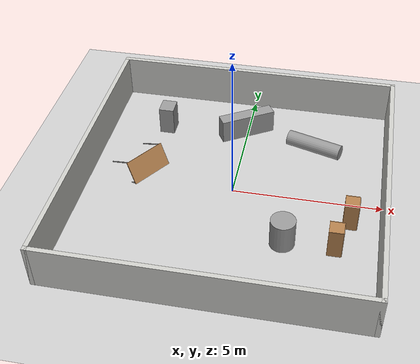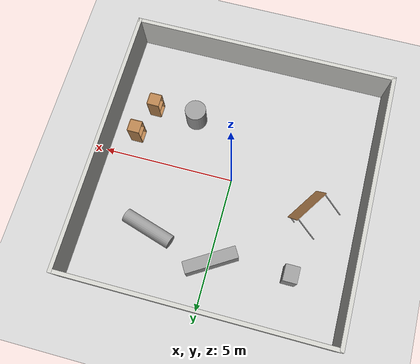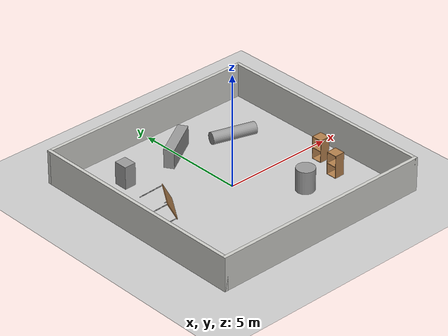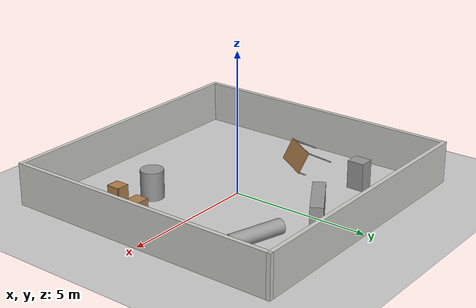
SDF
<sdf version="1.7">
 <world name="default">
  <light name="sun" type="directional">
   <pose>0 0 10 0 -0 0</pose>
   <diffuse>0.8 0.8 0.8 1</diffuse>
   <specular>0.2 0.2 0.2 1</specular>
   <attenuation>
    <range>1000</range>
    <constant>0.9</constant>
    <linear>0.01</linear>
    <quadratic>0.001</quadratic>
   </attenuation>
   <direction>-0.5 0.1 -0.9</direction>
   <spot><inner_angle>0</inner_angle><outer_angle>0</outer_angle><falloff>0</falloff></spot>
  </light>
  <model name="ground_plane">
   <static>1</static>
   <link name="link">
    <collision name="collision">
     <geometry><plane><normal>0 0 1</normal><size>100 100</size></plane></geometry>
     <surface><friction><ode><mu>100</mu><mu2>50</mu2></ode></friction></surface>
    </collision>
    <visual name="visual">
     <cast_shadows>0</cast_shadows>
     <geometry><plane><normal>0 0 1</normal><size>100 100</size></plane></geometry>
     <material>
      <script><uri>file://media/materials/scripts/gazebo.material</uri><name>Gazebo/Grey</name></script>
     </material>
    </visual>
   </link>
  </model>
  <gravity>0 0 -9.8</gravity>
  <magnetic_field>6e-06 2.3e-05 -4.2e-05</magnetic_field>
  <atmosphere type="adiabatic"/>
  <physics type="ode">
   <max_step_size>0.001</max_step_size>
   <real_time_factor>1</real_time_factor>
   <real_time_update_rate>1000</real_time_update_rate>
  </physics>
  <scene><ambient>0.4 0.4 0.4 1</ambient><background>0.7 0.7 0.7 1</background><shadows>1</shadows></scene>
  <audio><device>default</device></audio>
  <spherical_coordinates>
   <surface_model>EARTH_WGS84</surface_model>
   <latitude_deg>0</latitude_deg>
   <longitude_deg>0</longitude_deg>
   <elevation>0</elevation>
   <heading_deg>0</heading_deg>
  </spherical_coordinates>
  <model name="my_first_world">
   <pose>-0.01092 0.003198 0 0 -0 0</pose>
   <link name="Wall_38">
    <collision name="Wall_38_Collision">
     <geometry><box><size>10.15 0.15 1.5</size></box></geometry>
     <pose>0 0 0.75 0 -0 0</pose>
    </collision>
    <visual name="Wall_38_Visual">
     <pose>0 0 0.75 0 -0 0</pose>
     <geometry><box><size>10.15 0.15 1.5</size></box></geometry>
     <material>
      <script><uri>file://media/materials/scripts/gazebo.material</uri><name>Gazebo/CeilingTiled</name></script>
      <ambient>1 1 1 1</ambient>
     </material>
     <meta><layer>0</layer></meta>
    </visual>
    <pose>-5 0 0 0 -0 -1.5708</pose>
   </link>
   <link name="Wall_39">
    <collision name="Wall_39_Collision">
     <geometry><box><size>10.15 0.15 1.5</size></box></geometry>
     <pose>0 0 0.75 0 -0 0</pose>
    </collision>
    <visual name="Wall_39_Visual">
     <pose>0 0 0.75 0 -0 0</pose>
     <geometry><box><size>10.15 0.15 1.5</size></box></geometry>
     <material>
      <script><uri>file://media/materials/scripts/gazebo.material</uri><name>Gazebo/CeilingTiled</name></script>
      <ambient>1 1 1 1</ambient>
     </material>
     <meta><layer>0</layer></meta>
    </visual>
    <pose>0 -5 0 0 -0 0</pose>
   </link>
   <link name="Wall_40">
    <collision name="Wall_40_Collision">
     <geometry><box><size>10.15 0.15 1.5</size></box></geometry>
     <pose>0 0 0.75 0 -0 0</pose>
    </collision>
    <visual name="Wall_40_Visual">
     <pose>0 0 0.75 0 -0 0</pose>
     <geometry><box><size>10.15 0.15 1.5</size></box></geometry>
     <material>
      <script><uri>file://media/materials/scripts/gazebo.material</uri><name>Gazebo/CeilingTiled</name></script>
      <ambient>1 1 1 1</ambient>
     </material>
     <meta><layer>0</layer></meta>
    </visual>
    <pose>5 0 0 0 -0 1.5708</pose>
   </link>
   <link name="Wall_41">
    <collision name="Wall_41_Collision">
     <geometry><box><size>10.15 0.15 1.5</size></box></geometry>
     <pose>0 0 0.75 0 -0 0</pose>
    </collision>
    <visual name="Wall_41_Visual">
     <pose>0 0 0.75 0 -0 0</pose>
     <geometry><box><size>10.15 0.15 1.5</size></box></geometry>
     <material>
      <script><uri>file://media/materials/scripts/gazebo.material</uri><name>Gazebo/CeilingTiled</name></script>
      <ambient>1 1 1 1</ambient>
     </material>
     <meta><layer>0</layer></meta>
    </visual>
    <pose>0 5 0 0 -0 3.14159</pose>
   </link>
   <static>1</static>
  </model>
  <model name="unit_box">
   <pose>-2.93299 2.97169 0.5 0 0 -0.000183</pose>
   <link name="link">
    <inertial>
     <mass>1</mass>
     <inertia>
      <ixx>0.166667</ixx>
      <ixy>0</ixy>
      <ixz>0</ixz>
      <iyy>0.166667</iyy>
      <iyz>0</iyz>
      <izz>0.166667</izz>
     </inertia>
    </inertial>
    <collision name="collision"><geometry><box><size>0.524071 0.602367 1</size></box></geometry></collision>
    <visual name="visual">
     <geometry><box><size>0.524071 0.602367 1</size></box></geometry>
     <material>
      <script><name>Gazebo/Grey</name><uri>file://media/materials/scripts/gazebo.material</uri></script>
     </material>
    </visual>
   </link>
  </model>
  <model name="unit_cylinder">
   <pose>1.94949 -2.07605 0.499994 1e-06 1e-06 0</pose>
   <link name="link">
    <inertial>
     <mass>1</mass>
     <inertia><ixx>0.145833</ixx><ixy>0</ixy><ixz>0</ixz><iyy>0.145833</iyy><iyz>0</iyz><izz>0.125</izz></inertia>
    </inertial>
    <collision name="collision">
     <geometry><cylinder><radius>0.401266</radius><length>1</length></cylinder></geometry>
    </collision>
    <visual name="visual">
     <geometry><cylinder><radius>0.401266</radius><length>1</length></cylinder></geometry>
     <material>
      <script><name>Gazebo/Grey</name><uri>file://media/materials/scripts/gazebo.material</uri></script>
     </material>
    </visual>
   </link>
  </model>
  <model name="cabinet">
   <static>1</static>
   <link name="cabinet_bottom_plate">
    <inertial>
     <pose>0 0 -1 0 -0 0</pose>
     <inertia><ixx>2.05</ixx><ixy>0</ixy><ixz>0</ixz><iyy>2.05</iyy><iyz>0</iyz><izz>2.05</izz></inertia>
     <mass>25</mass>
    </inertial>
    <collision name="cabinet_bottom_plate_geom">
     <pose>0 0 0.01 0 -0 0</pose>
     <geometry><box><size>0.45 0.45 0.02</size></box></geometry>
    </collision>
    <visual name="cabinet_bottom_plate_geom_visual">
     <pose>0 0 0.01 0 -0 0</pose>
     <geometry><box><size>0.45 0.45 0.02</size></box></geometry>
     <material>
      <script><uri>file://media/materials/scripts/gazebo.material</uri><name>Gazebo/Wood</name></script>
     </material>
    </visual>
    <collision name="cabinet_bottom_plate_geom_cabinet_back_plate">
     <pose>0.235 0 0.51 0 -0 0</pose>
     <geometry><box><size>0.02 0.45 1.02</size></box></geometry>
    </collision>
    <visual name="cabinet_bottom_plate_geom_cabinet_back_plate_visual">
     <pose>0.235 0 0.51 0 -0 0</pose>
     <geometry><box><size>0.02 0.45 1.02</size></box></geometry>
     <material>
      <script><uri>file://media/materials/scripts/gazebo.material</uri><name>Gazebo/Wood</name></script>
     </material>
    </visual>
    <collision name="cabinet_bottom_plate_geom_cabinet_left_plate">
     <pose>0 0.235 0.51 0 -0 0</pose>
     <geometry><box><size>0.45 0.02 1.02</size></box></geometry>
    </collision>
    <visual name="cabinet_bottom_plate_geom_cabinet_left_plate_visual">
     <pose>0 0.235 0.51 0 -0 0</pose>
     <geometry><box><size>0.45 0.02 1.02</size></box></geometry>
     <material>
      <script><uri>file://media/materials/scripts/gazebo.material</uri><name>Gazebo/Wood</name></script>
     </material>
    </visual>
    <collision name="cabinet_bottom_plate_geom_cabinet_middle_plate">
     <pose>0 0 0.51 0 -0 0</pose>
     <geometry><box><size>0.45 0.45 0.02</size></box></geometry>
    </collision>
    <visual name="cabinet_bottom_plate_geom_cabinet_middle_plate_visual">
     <pose>0 0 0.51 0 -0 0</pose>
     <geometry><box><size>0.45 0.45 0.02</size></box></geometry>
     <material>
      <script><uri>file://media/materials/scripts/gazebo.material</uri><name>Gazebo/Wood</name></script>
     </material>
    </visual>
    <collision name="cabinet_bottom_plate_geom_cabinet_right_plate">
     <pose>0 -0.235 0.51 0 -0 0</pose>
     <geometry><box><size>0.45 0.02 1.02</size></box></geometry>
    </collision>
    <visual name="cabinet_bottom_plate_geom_cabinet_right_plate_visual">
     <pose>0 -0.235 0.51 0 -0 0</pose>
     <geometry><box><size>0.45 0.02 1.02</size></box></geometry>
     <material>
      <script><uri>file://media/materials/scripts/gazebo.material</uri><name>Gazebo/Wood</name></script>
     </material>
    </visual>
    <collision name="cabinet_bottom_plate_geom_cabinet_top_plate">
     <pose>0 0 1.01 0 -0 0</pose>
     <geometry><box><size>0.45 0.45 0.02</size></box></geometry>
    </collision>
    <visual name="cabinet_bottom_plate_geom_cabinet_top_plate_visual">
     <pose>0 0 1.01 0 -0 0</pose>
     <geometry><box><size>0.45 0.45 0.02</size></box></geometry>
     <material>
      <script><uri>file://media/materials/scripts/gazebo.material</uri><name>Gazebo/Wood</name></script>
     </material>
    </visual>
   </link>
   <pose>3.96562 -0.867046 0 0 -0 0</pose>
  </model>
  <model name="cabinet_0">
   <static>1</static>
   <link name="cabinet_bottom_plate">
    <inertial>
     <pose>0 0 -1 0 -0 0</pose>
     <inertia><ixx>2.05</ixx><ixy>0</ixy><ixz>0</ixz><iyy>2.05</iyy><iyz>0</iyz><izz>2.05</izz></inertia>
     <mass>25</mass>
    </inertial>
    <collision name="cabinet_bottom_plate_geom">
     <pose>0 0 0.01 0 -0 0</pose>
     <geometry><box><size>0.45 0.45 0.02</size></box></geometry>
    </collision>
    <visual name="cabinet_bottom_plate_geom_visual">
     <pose>0 0 0.01 0 -0 0</pose>
     <geometry><box><size>0.45 0.45 0.02</size></box></geometry>
     <material>
      <script><uri>file://media/materials/scripts/gazebo.material</uri><name>Gazebo/Wood</name></script>
     </material>
    </visual>
    <collision name="cabinet_bottom_plate_geom_cabinet_back_plate">
     <pose>0.235 0 0.51 0 -0 0</pose>
     <geometry><box><size>0.02 0.45 1.02</size></box></geometry>
    </collision>
    <visual name="cabinet_bottom_plate_geom_cabinet_back_plate_visual">
     <pose>0.235 0 0.51 0 -0 0</pose>
     <geometry><box><size>0.02 0.45 1.02</size></box></geometry>
     <material>
      <script><uri>file://media/materials/scripts/gazebo.material</uri><name>Gazebo/Wood</name></script>
     </material>
    </visual>
    <collision name="cabinet_bottom_plate_geom_cabinet_left_plate">
     <pose>0 0.235 0.51 0 -0 0</pose>
     <geometry><box><size>0.45 0.02 1.02</size></box></geometry>
    </collision>
    <visual name="cabinet_bottom_plate_geom_cabinet_left_plate_visual">
     <pose>0 0.235 0.51 0 -0 0</pose>
     <geometry><box><size>0.45 0.02 1.02</size></box></geometry>
     <material>
      <script><uri>file://media/materials/scripts/gazebo.material</uri><name>Gazebo/Wood</name></script>
     </material>
    </visual>
    <collision name="cabinet_bottom_plate_geom_cabinet_middle_plate">
     <pose>0 0 0.51 0 -0 0</pose>
     <geometry><box><size>0.45 0.45 0.02</size></box></geometry>
    </collision>
    <visual name="cabinet_bottom_plate_geom_cabinet_middle_plate_visual">
     <pose>0 0 0.51 0 -0 0</pose>
     <geometry><box><size>0.45 0.45 0.02</size></box></geometry>
     <material>
      <script><uri>file://media/materials/scripts/gazebo.material</uri><name>Gazebo/Wood</name></script>
     </material>
    </visual>
    <collision name="cabinet_bottom_plate_geom_cabinet_right_plate">
     <pose>0 -0.235 0.51 0 -0 0</pose>
     <geometry><box><size>0.45 0.02 1.02</size></box></geometry>
    </collision>
    <visual name="cabinet_bottom_plate_geom_cabinet_right_plate_visual">
     <pose>0 -0.235 0.51 0 -0 0</pose>
     <geometry><box><size>0.45 0.02 1.02</size></box></geometry>
     <material>
      <script><uri>file://media/materials/scripts/gazebo.material</uri><name>Gazebo/Wood</name></script>
     </material>
    </visual>
    <collision name="cabinet_bottom_plate_geom_cabinet_top_plate">
     <pose>0 0 1.01 0 -0 0</pose>
     <geometry><box><size>0.45 0.45 0.02</size></box></geometry>
    </collision>
    <visual name="cabinet_bottom_plate_geom_cabinet_top_plate_visual">
     <pose>0 0 1.01 0 -0 0</pose>
     <geometry><box><size>0.45 0.45 0.02</size></box></geometry>
     <material>
      <script><uri>file://media/materials/scripts/gazebo.material</uri><name>Gazebo/Wood</name></script>
     </material>
    </visual>
   </link>
   <pose>3.57188 -2.08963 0 0 -0 0</pose>
  </model>
  <model name="table">
   <static>1</static>
   <link name="link">
    <collision name="surface">
     <pose>0 0 1 0 -0 0</pose>
     <geometry><box><size>1.5 0.8 0.03</size></box></geometry>
     <surface><friction><ode><mu>0.6</mu><mu2>0.6</mu2></ode></friction></surface>
    </collision>
    <visual name="visual1">
     <pose>0 0 1 0 -0 0</pose>
     <geometry><box><size>1.5 0.8 0.03</size></box></geometry>
     <material>
      <script><uri>file://media/materials/scripts/gazebo.material</uri><name>Gazebo/Wood</name></script>
     </material>
    </visual>
    <collision name="front_left_leg">
     <pose>0.68 0.38 0.5 0 -0 0</pose>
     <geometry><cylinder><radius>0.02</radius><length>1</length></cylinder></geometry>
    </collision>
    <visual name="front_left_leg">
     <pose>0.68 0.38 0.5 0 -0 0</pose>
     <geometry><cylinder><radius>0.02</radius><length>1</length></cylinder></geometry>
     <material>
      <script><uri>file://media/materials/scripts/gazebo.material</uri><name>Gazebo/Grey</name></script>
     </material>
    </visual>
    <collision name="front_right_leg">
     <pose>0.68 -0.38 0.5 0 -0 0</pose>
     <geometry><cylinder><radius>0.02</radius><length>1</length></cylinder></geometry>
    </collision>
    <visual name="front_right_leg">
     <pose>0.68 -0.38 0.5 0 -0 0</pose>
     <geometry><cylinder><radius>0.02</radius><length>1</length></cylinder></geometry>
     <material>
      <script><uri>file://media/materials/scripts/gazebo.material</uri><name>Gazebo/Grey</name></script>
     </material>
    </visual>
    <collision name="back_right_leg">
     <pose>-0.68 -0.38 0.5 0 -0 0</pose>
     <geometry><cylinder><radius>0.02</radius><length>1</length></cylinder></geometry>
    </collision>
    <visual name="back_right_leg">
     <pose>-0.68 -0.38 0.5 0 -0 0</pose>
     <geometry><cylinder><radius>0.02</radius><length>1</length></cylinder></geometry>
     <material>
      <script><uri>file://media/materials/scripts/gazebo.material</uri><name>Gazebo/Grey</name></script>
     </material>
    </visual>
    <collision name="back_left_leg">
     <pose>-0.68 0.38 0.5 0 -0 0</pose>
     <geometry><cylinder><radius>0.02</radius><length>1</length></cylinder></geometry>
    </collision>
    <visual name="back_left_leg">
     <pose>-0.68 0.38 0.5 0 -0 0</pose>
     <geometry><cylinder><radius>0.02</radius><length>1</length></cylinder></geometry>
     <material>
      <script><uri>file://media/materials/scripts/gazebo.material</uri><name>Gazebo/Grey</name></script>
     </material>
    </visual>
   </link>
   <pose>-3.71942 0.811927 0 -1.09238 -0 -2.15225</pose>
  </model>
  <model name="unit_cylinder_0">
   <pose>2.46668 2.6122 0.262186 -0.02543 -1.57075 -0.269324</pose>
   <link name="link">
    <inertial>
     <mass>1</mass>
     <inertia><ixx>0.145833</ixx><ixy>0</ixy><ixz>0</ixz><iyy>0.145833</iyy><iyz>0</iyz><izz>0.125</izz></inertia>
    </inertial>
    <collision name="collision">
     <geometry><cylinder><radius>0.262228</radius><length>1.95408</length></cylinder></geometry>
    </collision>
    <visual name="visual">
     <geometry><cylinder><radius>0.262228</radius><length>1.95408</length></cylinder></geometry>
     <material>
      <script><name>Gazebo/Grey</name><uri>file://media/materials/scripts/gazebo.material</uri></script>
     </material>
    </visual>
   </link>
  </model>
  <model name="unit_box_0">
   <pose>-0.081297 3.19919 0.42118 0 -0 0.549007</pose>
   <link name="link">
    <inertial>
     <mass>1</mass>
     <inertia>
      <ixx>0.166667</ixx>
      <ixy>0</ixy>
      <ixz>0</ixz>
      <iyy>0.166667</iyy>
      <iyz>0</iyz>
      <izz>0.166667</izz>
     </inertia>
    </inertial>
    <collision name="collision"><geometry><box><size>1.96284 0.446894 0.842359</size></box></geometry></collision>
    <visual name="visual">
     <geometry><box><size>1.96284 0.446894 0.842359</size></box></geometry>
     <material>
      <script><name>Gazebo/Grey</name><uri>file://media/materials/scripts/gazebo.material</uri></script>
     </material>
    </visual>
   </link>
  </model>
 </world>
</sdf>
